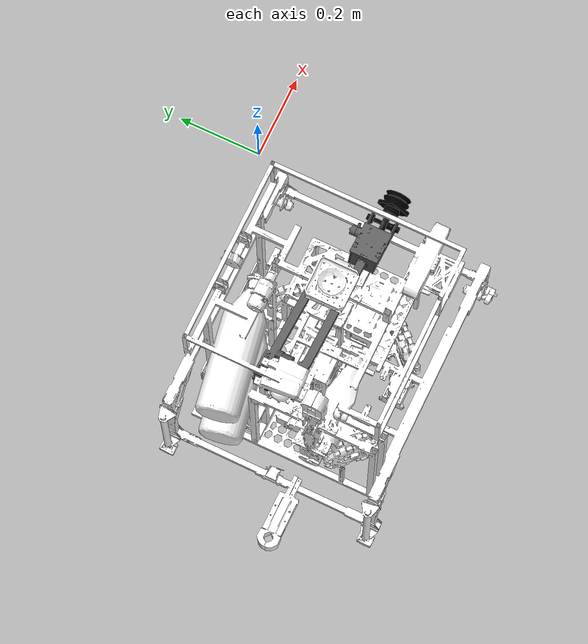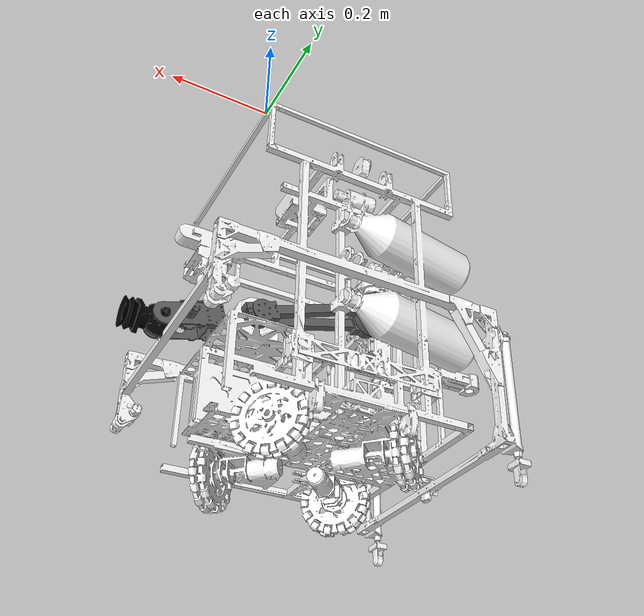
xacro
<?xml version="1.0"?>
<robot xmlns:xacro="http://www.ros.org/wiki/xacro" name="arm-new23">
  <xacro:arg name="arm_mount_x" default="0.0"/>
  <xacro:arg name="arm_mount_y" default="0.0"/>
  <xacro:arg name="arm_mount_z" default="0.0"/>
  <xacro:arg name="arm_mount_roll" default="0.0"/>
  <xacro:arg name="arm_mount_pitch" default="0.0"/>
  <xacro:arg name="arm_mount_yaw" default="0.0"/>

  <xacro:include filename="$(find rc_bringup)/urdf/reality/combined_geometry_new23_macro.xacro"/>

  <xacro:combined_arm_new23_geometry
    arm_mount_x="$(arg arm_mount_x)"
    arm_mount_y="$(arg arm_mount_y)"
    arm_mount_z="$(arg arm_mount_z)"
    arm_mount_roll="$(arg arm_mount_roll)"
    arm_mount_pitch="$(arg arm_mount_pitch)"
    arm_mount_yaw="$(arg arm_mount_yaw)"/>
</robot>

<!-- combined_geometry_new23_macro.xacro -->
<robot xmlns:xacro="http://www.ros.org/wiki/xacro" name="arm-new23_combined_geometry">
  <xacro:include filename="$(find rc_bringup)/urdf/reality/chassis_geometry_macro.xacro"/>
  <xacro:include filename="$(find arm-new23)/urdf/arm-new23.geometry_macro.xacro"/>

  <xacro:macro name="combined_arm_new23_geometry" params="
      arm_mount_x:=0.0
      arm_mount_y:=0.0
      arm_mount_z:=0.0
      arm_mount_roll:=0.0
      arm_mount_pitch:=0.0
      arm_mount_yaw:=0.0">
    <xacro:sentry_chassis_geometry/>

    <link name="arm_mount_link"/>
    <joint name="chassis_to_arm_mount_new23_joint" type="fixed">
      <origin
        xyz="${arm_mount_x} ${arm_mount_y} ${arm_mount_z}"
        rpy="${arm_mount_roll} ${arm_mount_pitch} ${arm_mount_yaw}"/>
      <parent link="chassis_link"/>
      <child link="arm_mount_link"/>
      <axis xyz="0 0 0"/>
    </joint>

    <xacro:arm_new23_geometry parent="arm_mount_link"/>
  </xacro:macro>
</robot>

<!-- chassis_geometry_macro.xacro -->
<robot xmlns:xacro="http://www.ros.org/wiki/xacro" name="sentry_chassis_geometry">
  <xacro:macro name="sentry_chassis_geometry" params="">
    <!-- Keep base_link at the MID360 internal IMU origin for FAST-LIO. -->
    <xacro:property name="livox_mount_roll" value="0.0"/>
    <xacro:property name="livox_mount_pitch" value="3.1415926"/>
    <xacro:property name="livox_mount_yaw" value="0.0"/>
    <xacro:property name="livox_in_imu_x" value="-0.011"/>
    <xacro:property name="livox_in_imu_y" value="-0.02329"/>
    <xacro:property name="livox_in_imu_z" value="0.04412"/>

    <link name="base_link"/>
    <link name="chassis_link"/>
    <link name="zed_camera_link"/>
    <link name="livox_frame"/>
    <link name="imu_link"/>

    <joint name="base_to_chassis_link" type="fixed">
      <origin rpy="0 0 0" xyz="-0.256 -0.291 -0.576"/>
      <parent link="base_link"/>
      <child link="chassis_link"/>
      <axis xyz="0 0 0"/>
    </joint>

    <joint name="base_to_imu" type="fixed">
      <origin
        rpy="${livox_mount_roll} ${livox_mount_pitch} ${livox_mount_yaw}"
        xyz="0 0 0"/>
      <parent link="base_link"/>
      <child link="imu_link"/>
      <axis xyz="0 0 0"/>
    </joint>

    <joint name="base_to_zed_camera_link" type="fixed">
      <origin rpy="0 0 0" xyz="0 0 0.1"/>
      <parent link="base_link"/>
      <child link="zed_camera_link"/>
      <axis xyz="0 0 0"/>
    </joint>

    <joint name="imu_to_livox" type="fixed">
      <origin rpy="0 0 0" xyz="${livox_in_imu_x} ${livox_in_imu_y} ${livox_in_imu_z}"/>
      <parent link="imu_link"/>
      <child link="livox_frame"/>
      <axis xyz="0 0 0"/>
    </joint>
  </xacro:macro>
</robot>

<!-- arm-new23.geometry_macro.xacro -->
<robot xmlns:xacro="http://www.ros.org/wiki/xacro" name="arm-new23_geometry">
  <xacro:macro name="arm_new23_geometry" params="parent:=arm_mount_link">
    <joint
      name="arm_mount_to_motion_link_joint"
      type="fixed">
      <origin
        xyz="0 0 0"
        rpy="0 0 0" />
      <parent
        link="${parent}" />
      <child
        link="motion_link" />
    </joint>

    <link
      name="motion_link">
      <inertial>
        <origin
          xyz="-0.1104 0.025935 0.29003"
          rpy="0 0 0" />
        <mass
          value="21.895" />
        <inertia
          ixx="0.032315"
          ixy="-0.0074415"
          ixz="-1.378E-05"
          iyy="0.08195"
          iyz="-8.6185E-06"
          izz="0.078666" />
      </inertial>
      <visual>
        <origin
          xyz="0 0 0"
          rpy="0 0 0" />
        <geometry>
          <mesh
            filename="package://arm-new23/meshes/mode_link_visual.obj" />
        </geometry>
        <material
          name="">
          <color
            rgba="1 1 1 1" />
        </material>
      </visual>
      <collision>
        <origin
          xyz="0 0 0"
          rpy="0 0 0" />
        <geometry>
          <mesh
            filename="package://arm-new23/meshes/mode_link.STL" />
        </geometry>
      </collision>
    </link>

    <link
      name="link1">
      <inertial>
        <origin
          xyz="-0.25553 -0.0083446 0.10722"
          rpy="0 0 0" />
        <mass
          value="0.72847" />
        <inertia
          ixx="0.000458"
          ixy="-1.2722E-07"
          ixz="0.00022349"
          iyy="0.0013914"
          iyz="1.196E-07"
          izz="0.00098718" />
      </inertial>
      <visual>
        <origin
          xyz="0 0 0"
          rpy="0 0 0" />
        <geometry>
          <mesh
            filename="package://arm-new23/meshes/link1.STL" />
        </geometry>
        <material
          name="">
          <color
            rgba="0.37255 0.37255 0.37255 1" />
        </material>
      </visual>
      <collision>
        <origin
          xyz="0 0 0"
          rpy="0 0 0" />
        <geometry>
          <mesh
            filename="package://arm-new23/meshes/link1.STL" />
        </geometry>
      </collision>
    </link>

    <joint
      name="joint1"
      type="continuous">
      <origin
        xyz="0.15389 0.063662 0.228"
        rpy="0 0 0" />
      <parent
        link="motion_link" />
      <child
        link="link1" />
      <axis
        xyz="0 1 0" />
    </joint>

    <link
      name="link2">
      <inertial>
        <origin
          xyz="0.21709 -0.017332 -0.060896"
          rpy="0 0 0" />
        <mass
          value="0.23746" />
        <inertia
          ixx="0.00015235"
          ixy="7.9141E-08"
          ixz="0.00031828"
          iyy="0.0012626"
          iyz="-2.2802E-08"
          izz="0.0011545" />
      </inertial>
      <visual>
        <origin
          xyz="0 0 0"
          rpy="0 0 0" />
        <geometry>
          <mesh
            filename="package://arm-new23/meshes/link2.STL" />
        </geometry>
        <material
          name="">
          <color
            rgba="0.37255 0.37255 0.37255 1" />
        </material>
      </visual>
      <collision>
        <origin
          xyz="0 0 0"
          rpy="0 0 0" />
        <geometry>
          <mesh
            filename="package://arm-new23/meshes/link2.STL" />
        </geometry>
      </collision>
    </link>

    <joint
      name="joint2"
      type="continuous">
      <origin
        xyz="-0.29285 -0.0373 0.12059"
        rpy="0 0 0" />
      <parent
        link="link1" />
      <child
        link="link2" />
      <axis
        xyz="0 1 0" />
      <limit
        effort="12.0"
        velocity="3" />
    </joint>

    <link
      name="link3">
      <inertial>
        <origin
          xyz="0.02987 0.037507 5.8072E-12"
          rpy="0 0 0" />
        <mass
          value="0.10789" />
        <inertia
          ixx="4.4714E-05"
          ixy="8.6802E-08"
          ixz="-1.4223E-15"
          iyy="3.7572E-05"
          iyz="-4.6372E-15"
          izz="2.9045E-05" />
      </inertial>
      <visual>
        <origin
          xyz="0 0 0"
          rpy="0 0 0" />
        <geometry>
          <mesh
            filename="package://arm-new23/meshes/link3.STL" />
        </geometry>
        <material
          name="">
          <color
            rgba="0 0 0 1" />
        </material>
      </visual>
      <collision>
        <origin
          xyz="0 0 0"
          rpy="0 0 0" />
        <geometry>
          <mesh
            filename="package://arm-new23/meshes/link3.STL" />
        </geometry>
      </collision>
    </link>

    <joint
      name="joint3"
      type="revolute">
      <origin
        xyz="0.47819 -0.063175 -0.13902"
        rpy="0 0 0" />
      <parent
        link="link2" />
      <child
        link="link3" />
      <axis
        xyz="0 1 0" />
      <limit
        lower="-1.57"
        upper="1.90"
        effort="10"
        velocity="2" />
    </joint>
  </xacro:macro>
</robot>
